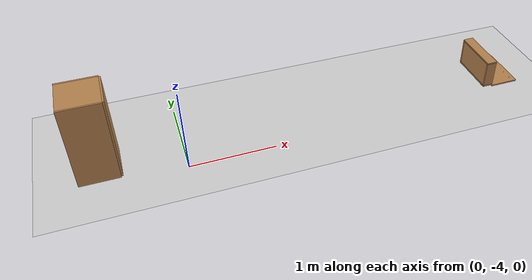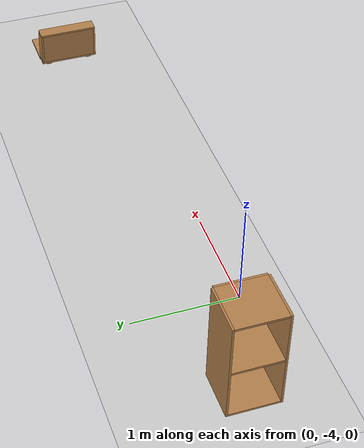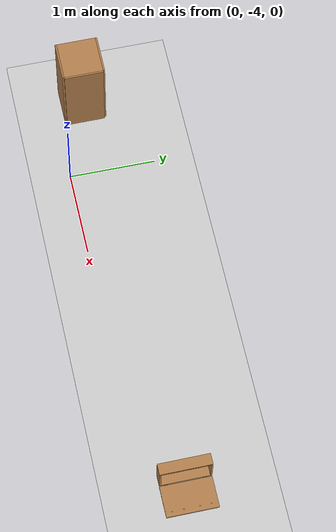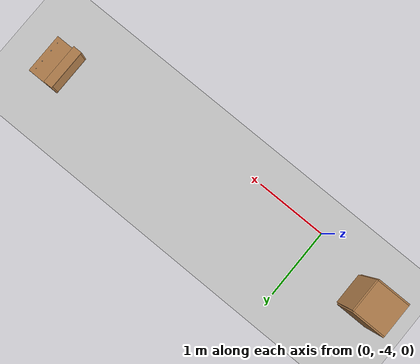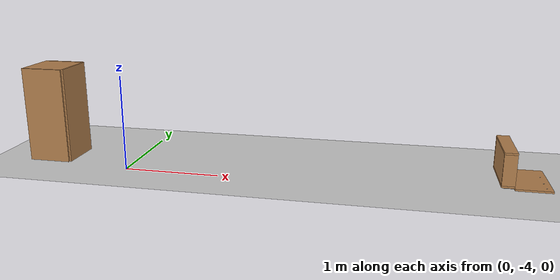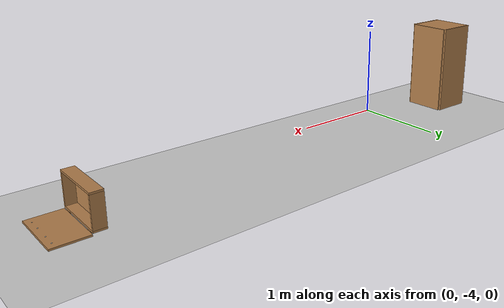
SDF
<sdf version="1.6">
 <world name="default">
  <light name="sun" type="directional">
   <pose>0 0 10 0 -0 0</pose>
   <diffuse>0.8 0.8 0.8 1</diffuse>
   <specular>0.1 0.1 0.1 1</specular>
   <attenuation>
    <range>1000</range>
    <constant>0.9</constant>
    <linear>0.01</linear>
    <quadratic>0.001</quadratic>
   </attenuation>
   <direction>-0.5 0.5 -1</direction>
  </light>
  <model name="ground_plane">
   <static>1</static>
   <link name="link">
    <collision name="collision">
     <geometry><plane><normal>0 0 1</normal><size>100 100</size></plane></geometry>
     <surface><friction><ode><mu>100</mu><mu2>50</mu2></ode></friction></surface>
    </collision>
    <visual name="visual">
     <cast_shadows>0</cast_shadows>
     <geometry><plane><normal>0 0 1</normal><size>100 100</size></plane></geometry>
     <material>
      <script><uri>file://media/materials/scripts/gazebo.material</uri><name>Gazebo/Grey</name></script>
     </material>
    </visual>
   </link>
  </model>
  <gravity>0 0 -9.8</gravity>
  <magnetic_field>6e-06 2.3e-05 -4.2e-05</magnetic_field>
  <atmosphere type="adiabatic"/>
  <physics name="default_physics" default="0" type="ode">
   <max_step_size>0.001</max_step_size>
   <real_time_factor>1</real_time_factor>
   <real_time_update_rate>1000</real_time_update_rate>
  </physics>
  <scene><ambient>0.4 0.4 0.4 1</ambient><background>0.7 0.7 0.7 1</background><shadows>1</shadows></scene>
  <spherical_coordinates>
   <surface_model>EARTH_WGS84</surface_model>
   <latitude_deg>0</latitude_deg>
   <longitude_deg>0</longitude_deg>
   <elevation>0</elevation>
   <heading_deg>0</heading_deg>
  </spherical_coordinates>
  <model name="wooden_case">
   <link name="base">
    <pose>0 0 0.024 0 -0 0</pose>
    <inertial>
     <pose>-0.022184 0 0.171592 0 -0 0</pose>
     <mass>3.96264</mass>
     <inertia>
      <ixx>0.213536</ixx>
      <ixy>0</ixy>
      <ixz>0.000779377</ixz>
      <iyy>0.0708943</iyy>
      <iyz>0</iyz>
      <izz>0.154604</izz>
     </inertia>
    </inertial>
    <collision name="collision_back">
     <pose>-0.053975 0 0.1778 0 -0 0</pose>
     <geometry><box><size>0.01905 0.5461 0.3175</size></box></geometry>
     <surface>
      <contact>
       <poissons_ratio>0.347</poissons_ratio>
       <elastic_modulus>8.8e+09</elastic_modulus>
       <ode><kp>100000</kp><kd>100</kd><max_vel>100</max_vel><min_depth>0.001</min_depth></ode>
      </contact>
      <friction>
       <torsional>
        <coefficient>1</coefficient>
        <use_patch_radius>0</use_patch_radius>
        <surface_radius>0.01</surface_radius>
       </torsional>
      </friction>
     </surface>
    </collision>
    <visual name="visual_back">
     <pose>-0.053975 0 0.1778 0 -0 0</pose>
     <geometry><box><size>0.01905 0.5461 0.3175</size></box></geometry>
     <material>
      <script><uri>file://media/materials/scripts/gazebo.material</uri><name>Gazebo/Wood</name></script>
     </material>
    </visual>
    <collision name="collision_bottom">
     <pose>0 0 0.009525 0 -0 0</pose>
     <geometry><box><size>0.127 0.5842 0.01905</size></box></geometry>
     <surface>
      <contact>
       <poissons_ratio>0.347</poissons_ratio>
       <elastic_modulus>8.8e+09</elastic_modulus>
       <ode><kp>100000</kp><kd>100</kd><max_vel>100</max_vel><min_depth>0.001</min_depth></ode>
      </contact>
      <friction>
       <torsional>
        <coefficient>1</coefficient>
        <use_patch_radius>0</use_patch_radius>
        <surface_radius>0.01</surface_radius>
       </torsional>
      </friction>
     </surface>
    </collision>
    <visual name="visual_bottom">
     <pose>0 0 0.009525 0 -0 0</pose>
     <geometry><box><size>0.127 0.5842 0.01905</size></box></geometry>
     <material>
      <script><uri>file://media/materials/scripts/gazebo.material</uri><name>Gazebo/Wood</name></script>
     </material>
    </visual>
    <collision name="collision_top">
     <pose>0 0 0.346075 0 -0 0</pose>
     <geometry><box><size>0.127 0.5842 0.01905</size></box></geometry>
     <surface>
      <contact>
       <poissons_ratio>0.347</poissons_ratio>
       <elastic_modulus>8.8e+09</elastic_modulus>
       <ode><kp>100000</kp><kd>100</kd><max_vel>100</max_vel><min_depth>0.001</min_depth></ode>
      </contact>
      <friction>
       <torsional>
        <coefficient>1</coefficient>
        <use_patch_radius>0</use_patch_radius>
        <surface_radius>0.01</surface_radius>
       </torsional>
      </friction>
     </surface>
    </collision>
    <visual name="visual_top">
     <pose>0 0 0.346075 0 -0 0</pose>
     <geometry><box><size>0.127 0.5842 0.01905</size></box></geometry>
     <material>
      <script><uri>file://media/materials/scripts/gazebo.material</uri><name>Gazebo/Wood</name></script>
     </material>
    </visual>
    <collision name="collision_left">
     <pose>0 -0.282575 0.1778 0 -0 0</pose>
     <geometry><box><size>0.127 0.01905 0.3175</size></box></geometry>
     <surface>
      <contact>
       <poissons_ratio>0.347</poissons_ratio>
       <elastic_modulus>8.8e+09</elastic_modulus>
       <ode><kp>100000</kp><kd>100</kd><max_vel>100</max_vel><min_depth>0.001</min_depth></ode>
      </contact>
      <friction>
       <torsional>
        <coefficient>1</coefficient>
        <use_patch_radius>0</use_patch_radius>
        <surface_radius>0.01</surface_radius>
       </torsional>
      </friction>
     </surface>
    </collision>
    <visual name="visual_left">
     <pose>0 -0.282575 0.1778 0 -0 0</pose>
     <geometry><box><size>0.127 0.01905 0.3175</size></box></geometry>
     <material>
      <script><uri>file://media/materials/scripts/gazebo.material</uri><name>Gazebo/Wood</name></script>
     </material>
    </visual>
    <collision name="collision_right">
     <pose>0 0.282575 0.1778 0 -0 0</pose>
     <geometry><box><size>0.127 0.01905 0.3175</size></box></geometry>
     <surface>
      <contact>
       <poissons_ratio>0.347</poissons_ratio>
       <elastic_modulus>8.8e+09</elastic_modulus>
       <ode><kp>100000</kp><kd>100</kd><max_vel>100</max_vel><min_depth>0.001</min_depth></ode>
      </contact>
      <friction>
       <torsional>
        <coefficient>1</coefficient>
        <use_patch_radius>0</use_patch_radius>
        <surface_radius>0.01</surface_radius>
       </torsional>
      </friction>
     </surface>
    </collision>
    <visual name="visual_right">
     <pose>0 0.282575 0.1778 0 -0 0</pose>
     <geometry><box><size>0.127 0.01905 0.3175</size></box></geometry>
     <material>
      <script><uri>file://media/materials/scripts/gazebo.material</uri><name>Gazebo/Wood</name></script>
     </material>
    </visual>
    <collision name="collision_block_left">
     <pose>0.0095 -0.2151 -0.012 0 -0 0</pose>
     <geometry><box><size>0.108 0.05 0.024</size></box></geometry>
     <surface>
      <contact>
       <poissons_ratio>0.347</poissons_ratio>
       <elastic_modulus>8.8e+09</elastic_modulus>
       <ode><kp>100000</kp><kd>100</kd><max_vel>100</max_vel><min_depth>0.001</min_depth></ode>
      </contact>
      <friction>
       <torsional>
        <coefficient>1</coefficient>
        <use_patch_radius>0</use_patch_radius>
        <surface_radius>0.01</surface_radius>
       </torsional>
      </friction>
     </surface>
    </collision>
    <visual name="visual_block_left">
     <pose>0.0095 -0.2151 -0.012 0 -0 0</pose>
     <geometry><box><size>0.108 0.05 0.024</size></box></geometry>
     <material>
      <script><uri>file://media/materials/scripts/gazebo.material</uri><name>Gazebo/Wood</name></script>
     </material>
    </visual>
    <collision name="collision_block_right">
     <pose>0.0095 0.2151 -0.012 0 -0 0</pose>
     <geometry><box><size>0.108 0.05 0.024</size></box></geometry>
     <surface>
      <contact>
       <poissons_ratio>0.347</poissons_ratio>
       <elastic_modulus>8.8e+09</elastic_modulus>
       <ode><kp>100000</kp><kd>100</kd><max_vel>100</max_vel><min_depth>0.001</min_depth></ode>
      </contact>
      <friction>
       <torsional>
        <coefficient>1</coefficient>
        <use_patch_radius>0</use_patch_radius>
        <surface_radius>0.01</surface_radius>
       </torsional>
      </friction>
     </surface>
    </collision>
    <visual name="visual_block_right">
     <pose>0.0095 0.2151 -0.012 0 -0 0</pose>
     <geometry><box><size>0.108 0.05 0.024</size></box></geometry>
     <material>
      <script><uri>file://media/materials/scripts/gazebo.material</uri><name>Gazebo/Wood</name></script>
     </material>
    </visual>
   </link>
   <link name="lid">
    <pose>0.243775 0 0.009525 0 -0 0</pose>
    <inertial>
     <mass>1.97874</mass>
     <inertia>
      <ixx>0.0563367</ixx>
      <ixy>0</ixy>
      <ixz>0</ixz>
      <iyy>0.020911</iyy>
      <iyz>0</iyz>
      <izz>0.0771281</izz>
     </inertia>
    </inertial>
    <collision name="collision">
     <geometry><box><size>0.3556 0.5842 0.01905</size></box></geometry>
     <surface>
      <contact>
       <poissons_ratio>0.347</poissons_ratio>
       <elastic_modulus>8.8e+09</elastic_modulus>
       <ode><kp>100000</kp><kd>100</kd><max_vel>100</max_vel><min_depth>0.001</min_depth></ode>
      </contact>
      <friction>
       <torsional>
        <coefficient>1</coefficient>
        <use_patch_radius>0</use_patch_radius>
        <surface_radius>0.01</surface_radius>
       </torsional>
      </friction>
     </surface>
    </collision>
    <visual name="visual">
     <geometry><box><size>0.3556 0.5842 0.01905</size></box></geometry>
     <material>
      <script><uri>file://media/materials/scripts/gazebo.material</uri><name>Gazebo/Wood</name></script>
     </material>
    </visual>
    <visual name="tee_nut_1">
     <pose>0.122 -0.216 0 0 -0 0</pose>
     <geometry><cylinder><radius>0.00635</radius><length>0.0192405</length></cylinder></geometry>
     <material>
      <script><uri>file://media/materials/scripts/gazebo.material</uri><name>Gazebo/Grey</name></script>
     </material>
    </visual>
    <visual name="tee_nut_2">
     <pose>0.122 -0.088 0 0 -0 0</pose>
     <geometry><cylinder><radius>0.00635</radius><length>0.0192405</length></cylinder></geometry>
     <material>
      <script><uri>file://media/materials/scripts/gazebo.material</uri><name>Gazebo/Grey</name></script>
     </material>
    </visual>
    <visual name="tee_nut_3">
     <pose>0.122 0.088 0 0 -0 0</pose>
     <geometry><cylinder><radius>0.00635</radius><length>0.0192405</length></cylinder></geometry>
     <material>
      <script><uri>file://media/materials/scripts/gazebo.material</uri><name>Gazebo/Grey</name></script>
     </material>
    </visual>
    <visual name="tee_nut_4">
     <pose>0.122 0.216 0 0 -0 0</pose>
     <geometry><cylinder><radius>0.00635</radius><length>0.0192405</length></cylinder></geometry>
     <material>
      <script><uri>file://media/materials/scripts/gazebo.material</uri><name>Gazebo/Grey</name></script>
     </material>
    </visual>
   </link>
   <joint name="lid_hinge" type="revolute">
    <pose>-0.1778 0 0.01905 0 -0 0</pose>
    <parent>base</parent>
    <child>lid</child>
    <axis>
     <xyz>0 1 0</xyz>
     <limit><upper>0.523599</upper><lower>-1.5708</lower></limit>
     <use_parent_model_frame>0</use_parent_model_frame>
     <dynamics><spring_reference>0</spring_reference><spring_stiffness>0</spring_stiffness></dynamics>
    </axis>
   </joint>
   <pose>3.86254 -3.52396 -0.001057 0 -0.000426 0</pose>
  </model>
  <model name="cabinet">
   <static>1</static>
   <link name="cabinet_bottom_plate">
    <inertial>
     <pose>0 0 -1 0 -0 0</pose>
     <inertia><ixx>2.05</ixx><ixy>0</ixy><ixz>0</ixz><iyy>2.05</iyy><iyz>0</iyz><izz>2.05</izz></inertia>
     <mass>25</mass>
    </inertial>
    <collision name="cabinet_bottom_plate_geom">
     <pose>0 0 0.01 0 -0 0</pose>
     <geometry><box><size>0.45 0.45 0.02</size></box></geometry>
    </collision>
    <visual name="cabinet_bottom_plate_geom_visual">
     <pose>0 0 0.01 0 -0 0</pose>
     <geometry><box><size>0.45 0.45 0.02</size></box></geometry>
     <material>
      <script><uri>file://media/materials/scripts/gazebo.material</uri><name>Gazebo/Wood</name></script>
     </material>
    </visual>
    <collision name="cabinet_bottom_plate_geom_cabinet_back_plate">
     <pose>0.235 0 0.51 0 -0 0</pose>
     <geometry><box><size>0.02 0.45 1.02</size></box></geometry>
    </collision>
    <visual name="cabinet_bottom_plate_geom_cabinet_back_plate_visual">
     <pose>0.235 0 0.51 0 -0 0</pose>
     <geometry><box><size>0.02 0.45 1.02</size></box></geometry>
     <material>
      <script><uri>file://media/materials/scripts/gazebo.material</uri><name>Gazebo/Wood</name></script>
     </material>
    </visual>
    <collision name="cabinet_bottom_plate_geom_cabinet_left_plate">
     <pose>0 0.235 0.51 0 -0 0</pose>
     <geometry><box><size>0.45 0.02 1.02</size></box></geometry>
    </collision>
    <visual name="cabinet_bottom_plate_geom_cabinet_left_plate_visual">
     <pose>0 0.235 0.51 0 -0 0</pose>
     <geometry><box><size>0.45 0.02 1.02</size></box></geometry>
     <material>
      <script><uri>file://media/materials/scripts/gazebo.material</uri><name>Gazebo/Wood</name></script>
     </material>
    </visual>
    <collision name="cabinet_bottom_plate_geom_cabinet_middle_plate">
     <pose>0 0 0.51 0 -0 0</pose>
     <geometry><box><size>0.45 0.45 0.02</size></box></geometry>
    </collision>
    <visual name="cabinet_bottom_plate_geom_cabinet_middle_plate_visual">
     <pose>0 0 0.51 0 -0 0</pose>
     <geometry><box><size>0.45 0.45 0.02</size></box></geometry>
     <material>
      <script><uri>file://media/materials/scripts/gazebo.material</uri><name>Gazebo/Wood</name></script>
     </material>
    </visual>
    <collision name="cabinet_bottom_plate_geom_cabinet_right_plate">
     <pose>0 -0.235 0.51 0 -0 0</pose>
     <geometry><box><size>0.45 0.02 1.02</size></box></geometry>
    </collision>
    <visual name="cabinet_bottom_plate_geom_cabinet_right_plate_visual">
     <pose>0 -0.235 0.51 0 -0 0</pose>
     <geometry><box><size>0.45 0.02 1.02</size></box></geometry>
     <material>
      <script><uri>file://media/materials/scripts/gazebo.material</uri><name>Gazebo/Wood</name></script>
     </material>
    </visual>
    <collision name="cabinet_bottom_plate_geom_cabinet_top_plate">
     <pose>0 0 1.01 0 -0 0</pose>
     <geometry><box><size>0.45 0.45 0.02</size></box></geometry>
    </collision>
    <visual name="cabinet_bottom_plate_geom_cabinet_top_plate_visual">
     <pose>0 0 1.01 0 -0 0</pose>
     <geometry><box><size>0.45 0.45 0.02</size></box></geometry>
     <material>
      <script><uri>file://media/materials/scripts/gazebo.material</uri><name>Gazebo/Wood</name></script>
     </material>
    </visual>
   </link>
   <pose>-0.939734 -3.67361 0 0 -0 0</pose>
  </model>
 </world>
</sdf>
